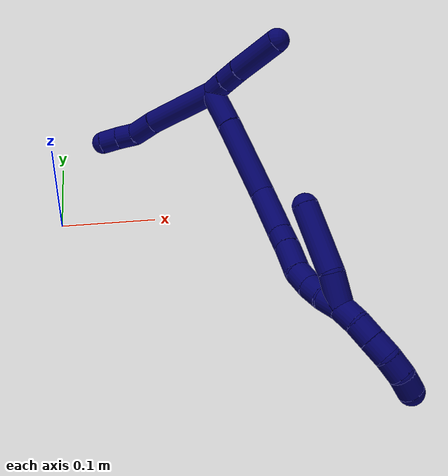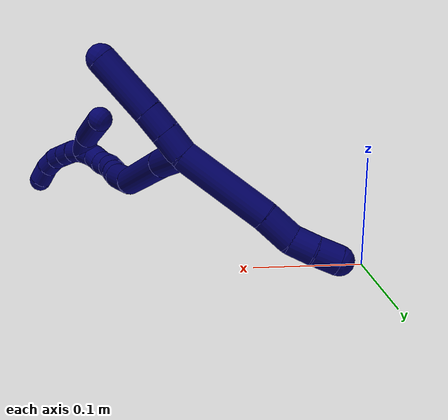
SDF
<sdf version="1.7">
 <world name="default">
  <model name="photoneo_s_sensor">
   <static>1</static>
   <pose>0 0 2 1.57079 1.57079 3.14159</pose>
   <link name="link">
    <inertial><mass>0.1</mass></inertial>
    <sensor name="sensor" type="depth">
     <update_rate>30</update_rate>
     <camera>
      <horizontal_fov>1.22</horizontal_fov>
      <image><width>1920</width><height>1200</height><format>B8G8R8</format></image>
      <clip><near>0.1</near><far>4</far></clip>
      <depth_camera><output>points</output></depth_camera>
     </camera>
     <plugin name="camera_plugin" filename="libgazebo_ros_depth_camera.so">
      <baseline>0.2</baseline>
      <alwaysOn>1</alwaysOn>
      <updateRate>0.0</updateRate>
      <cameraName>camera_ir</cameraName>
      <imageTopicName>/camera/color/image_raw</imageTopicName>
      <cameraInfoTopicName>/camera/color/camera_info</cameraInfoTopicName>
      <depthImageTopicName>/camera/depth/image_raw</depthImageTopicName>
      <depthImageCameraInfoTopicName>/camera/depth/camera_info</depthImageCameraInfoTopicName>
      <pointCloudTopicName>/camera/depth/points</pointCloudTopicName>
      <frameName>fr_optical</frameName>
      <pointCloudCutoff>0.1</pointCloudCutoff>
      <pointCloudCutoffMax>2.0</pointCloudCutoffMax>
      <distortionK1>0</distortionK1>
      <distortionK2>0</distortionK2>
      <distortionK3>0</distortionK3>
      <distortionT1>0</distortionT1>
      <distortionT2>0</distortionT2>
      <CxPrime>0</CxPrime>
      <Cx>0</Cx>
      <Cy>0</Cy>
      <focalLength>0</focalLength>
      <hackBaseline>0</hackBaseline>
     </plugin>
    </sensor>
   </link>
  </model>
  <model name="bin">
   <static>1</static>
   <link name="bottom">
    <collision name="collision-bottom">
     <pose>0 0 -0.01 0 -0 0</pose>
     <geometry><box><size>0.8 0.6 0.02</size></box></geometry>
     <surface>
      <friction><ode><mu>100</mu><mu2>100</mu2></ode></friction>
      <contact><collide_bitmask>65535</collide_bitmask></contact>
     </surface>
    </collision>
   </link>
   <link name="west_wall">
    <collision name="collision-west_wall">
     <pose>-0.41 0 0.1 0 -0 0</pose>
     <geometry><box><size>0.02 0.6 0.2</size></box></geometry>
     <surface>
      <friction><ode><mu>100</mu><mu2>100</mu2></ode></friction>
      <contact><collide_bitmask>65535</collide_bitmask></contact>
     </surface>
    </collision>
   </link>
   <link name="east_wall">
    <collision name="collision-east_wall">
     <pose>0.41 0 0.1 0 -0 0</pose>
     <geometry><box><size>0.02 0.6 0.2</size></box></geometry>
     <surface>
      <friction><ode><mu>100</mu><mu2>100</mu2></ode></friction>
      <contact><collide_bitmask>65535</collide_bitmask></contact>
     </surface>
    </collision>
   </link>
   <link name="south_wall">
    <collision name="collision-south_wall">
     <pose>0 -0.31 0.1 0 -0 0</pose>
     <geometry><box><size>0.8 0.02 0.2</size></box></geometry>
     <surface>
      <friction><ode><mu>100</mu><mu2>100</mu2></ode></friction>
      <contact><collide_bitmask>65535</collide_bitmask></contact>
     </surface>
    </collision>
   </link>
   <link name="north_wall">
    <collision name="collision-north_wall">
     <pose>0 0.31 0.1 0 -0 0</pose>
     <geometry><box><size>0.8 0.02 0.2</size></box></geometry>
     <surface>
      <friction><ode><mu>100</mu><mu2>100</mu2></ode></friction>
      <contact><collide_bitmask>65535</collide_bitmask></contact>
     </surface>
    </collision>
   </link>
  </model>
  <model name="7">
   <static>0</static>
   <link name="7">
    <collision name="collision-cylinder-e_1_2_8">
     <pose>-0.002629 -0.009441 -0.039154 2.90498 -0.065177 -0.535371</pose>
     <geometry><cylinder><radius>0.0125</radius><length>0.080723</length></cylinder></geometry>
     <surface>
      <friction><ode><mu>1.16</mu><mu2>1.16</mu2><slip1>0</slip1><slip2>0</slip2></ode></friction>
      <contact><ode><kp>1e+06</kp><kd>1</kd><max_vel>0</max_vel><min_depth>0.001</min_depth></ode></contact>
     </surface>
    </collision>
    <visual name="visual-cylinder-e_1_2_8">
     <pose>-0.002629 -0.009441 -0.039154 2.90498 -0.065177 -0.535371</pose>
     <geometry><cylinder><radius>0.0125</radius><length>0.080723</length></cylinder></geometry>
     <material><ambient>0.003922 0 0.403922 1</ambient></material>
    </visual>
    <collision name="collision-cylinder-e_2_8_9">
     <pose>-0.00526 -0.023241 -0.091728 2.82753 -0.000159 -0.001007</pose>
     <geometry><cylinder><radius>0.0125</radius><length>0.028222</length></cylinder></geometry>
     <surface>
      <friction><ode><mu>1.16</mu><mu2>1.16</mu2><slip1>0</slip1><slip2>0</slip2></ode></friction>
      <contact><ode><kp>1e+06</kp><kd>1</kd><max_vel>0</max_vel><min_depth>0.001</min_depth></ode></contact>
     </surface>
    </collision>
    <visual name="visual-cylinder-e_2_8_9">
     <pose>-0.00526 -0.023241 -0.091728 2.82753 -0.000159 -0.001007</pose>
     <geometry><cylinder><radius>0.0125</radius><length>0.028222</length></cylinder></geometry>
     <material><ambient>0.003922 0 0.403922 1</ambient></material>
    </visual>
    <collision name="collision-cylinder-e_3_9_10">
     <pose>-0.00736 -0.028222 -0.115212 3.07994 -0.205164 -2.55954</pose>
     <geometry><cylinder><radius>0.0125</radius><length>0.020596</length></cylinder></geometry>
     <surface>
      <friction><ode><mu>1.16</mu><mu2>1.16</mu2><slip1>0</slip1><slip2>0</slip2></ode></friction>
      <contact><ode><kp>1e+06</kp><kd>1</kd><max_vel>0</max_vel><min_depth>0.001</min_depth></ode></contact>
     </surface>
    </collision>
    <visual name="visual-cylinder-e_3_9_10">
     <pose>-0.00736 -0.028222 -0.115212 3.07994 -0.205164 -2.55954</pose>
     <geometry><cylinder><radius>0.0125</radius><length>0.020596</length></cylinder></geometry>
     <material><ambient>0.003922 0 0.403922 1</ambient></material>
    </visual>
    <collision name="collision-cylinder-e_4_10_6">
     <pose>-0.012513 -0.030271 -0.134932 2.99484 -0.303296 -2.24491</pose>
     <geometry><cylinder><radius>0.0125</radius><length>0.020459</length></cylinder></geometry>
     <surface>
      <friction><ode><mu>1.16</mu><mu2>1.16</mu2><slip1>0</slip1><slip2>0</slip2></ode></friction>
      <contact><ode><kp>1e+06</kp><kd>1</kd><max_vel>0</max_vel><min_depth>0.001</min_depth></ode></contact>
     </surface>
    </collision>
    <visual name="visual-cylinder-e_4_10_6">
     <pose>-0.012513 -0.030271 -0.134932 2.99484 -0.303296 -2.24491</pose>
     <geometry><cylinder><radius>0.0125</radius><length>0.020459</length></cylinder></geometry>
     <material><ambient>0.003922 0 0.403922 1</ambient></material>
    </visual>
    <collision name="collision-cylinder-e_1_2_11">
     <pose>-0.001931 0.003882 0.010235 -0.362468 -0.17456 0.032066</pose>
     <geometry><cylinder><radius>0.0125</radius><length>0.022231</length></cylinder></geometry>
     <surface>
      <friction><ode><mu>1.16</mu><mu2>1.16</mu2><slip1>0</slip1><slip2>0</slip2></ode></friction>
      <contact><ode><kp>1e+06</kp><kd>1</kd><max_vel>0</max_vel><min_depth>0.001</min_depth></ode></contact>
     </surface>
    </collision>
    <visual name="visual-cylinder-e_1_2_11">
     <pose>-0.001931 0.003882 0.010235 -0.362468 -0.17456 0.032066</pose>
     <geometry><cylinder><radius>0.0125</radius><length>0.022231</length></cylinder></geometry>
     <material><ambient>0.003922 0 0.403922 1</ambient></material>
    </visual>
    <collision name="collision-cylinder-e_2_11_12">
     <pose>-0.005513 0.011471 0.03062 -0.350264 -0.151686 0.02689</pose>
     <geometry><cylinder><radius>0.0125</radius><length>0.021862</length></cylinder></geometry>
     <surface>
      <friction><ode><mu>1.16</mu><mu2>1.16</mu2><slip1>0</slip1><slip2>0</slip2></ode></friction>
      <contact><ode><kp>1e+06</kp><kd>1</kd><max_vel>0</max_vel><min_depth>0.001</min_depth></ode></contact>
     </surface>
    </collision>
    <visual name="visual-cylinder-e_2_11_12">
     <pose>-0.005513 0.011471 0.03062 -0.350264 -0.151686 0.02689</pose>
     <geometry><cylinder><radius>0.0125</radius><length>0.021862</length></cylinder></geometry>
     <material><ambient>0.003922 0 0.403922 1</ambient></material>
    </visual>
    <collision name="collision-cylinder-e_3_12_5">
     <pose>-0.010446 0.024162 0.067036 -0.329533 -0.117647 0.019584</pose>
     <geometry><cylinder><radius>0.0125</radius><length>0.055907</length></cylinder></geometry>
     <surface>
      <friction><ode><mu>1.16</mu><mu2>1.16</mu2><slip1>0</slip1><slip2>0</slip2></ode></friction>
      <contact><ode><kp>1e+06</kp><kd>1</kd><max_vel>0</max_vel><min_depth>0.001</min_depth></ode></contact>
     </surface>
    </collision>
    <visual name="visual-cylinder-e_3_12_5">
     <pose>-0.010446 0.024162 0.067036 -0.329533 -0.117647 0.019584</pose>
     <geometry><cylinder><radius>0.0125</radius><length>0.055907</length></cylinder></geometry>
     <material><ambient>0.003922 0 0.403922 1</ambient></material>
    </visual>
    <collision name="collision-cylinder-e_1_2_13">
     <pose>-0.002123 -0.019717 0.010529 1.08033 -0.094704 -0.056817</pose>
     <geometry><cylinder><radius>0.0125</radius><length>0.044905</length></cylinder></geometry>
     <surface>
      <friction><ode><mu>1.16</mu><mu2>1.16</mu2><slip1>0</slip1><slip2>0</slip2></ode></friction>
      <contact><ode><kp>1e+06</kp><kd>1</kd><max_vel>0</max_vel><min_depth>0.001</min_depth></ode></contact>
     </surface>
    </collision>
    <visual name="visual-cylinder-e_1_2_13">
     <pose>-0.002123 -0.019717 0.010529 1.08033 -0.094704 -0.056817</pose>
     <geometry><cylinder><radius>0.0125</radius><length>0.044905</length></cylinder></geometry>
     <material><ambient>0.003922 0 0.403922 1</ambient></material>
    </visual>
    <collision name="collision-cylinder-e_2_13_14">
     <pose>-0.006924 -0.078455 0.039446 1.13041 -0.062003 -0.039331</pose>
     <geometry><cylinder><radius>0.0125</radius><length>0.08644</length></cylinder></geometry>
     <surface>
      <friction><ode><mu>1.16</mu><mu2>1.16</mu2><slip1>0</slip1><slip2>0</slip2></ode></friction>
      <contact><ode><kp>1e+06</kp><kd>1</kd><max_vel>0</max_vel><min_depth>0.001</min_depth></ode></contact>
     </surface>
    </collision>
    <visual name="visual-cylinder-e_2_13_14">
     <pose>-0.006924 -0.078455 0.039446 1.13041 -0.062003 -0.039331</pose>
     <geometry><cylinder><radius>0.0125</radius><length>0.08644</length></cylinder></geometry>
     <material><ambient>0.003922 0 0.403922 1</ambient></material>
    </visual>
    <collision name="collision-cylinder-e_3_14_15">
     <pose>-0.018121 -0.138717 0.071442 1.00105 -0.325678 -0.17925</pose>
     <geometry><cylinder><radius>0.0125</radius><length>0.05325</length></cylinder></geometry>
     <surface>
      <friction><ode><mu>1.16</mu><mu2>1.16</mu2><slip1>0</slip1><slip2>0</slip2></ode></friction>
      <contact><ode><kp>1e+06</kp><kd>1</kd><max_vel>0</max_vel><min_depth>0.001</min_depth></ode></contact>
     </surface>
    </collision>
    <visual name="visual-cylinder-e_3_14_15">
     <pose>-0.018121 -0.138717 0.071442 1.00105 -0.325678 -0.17925</pose>
     <geometry><cylinder><radius>0.0125</radius><length>0.05325</length></cylinder></geometry>
     <material><ambient>0.003922 0 0.403922 1</ambient></material>
    </visual>
    <collision name="collision-cylinder-e_4_15_16">
     <pose>-0.03076 -0.167309 0.09061 0.923214 -0.420347 -0.211445</pose>
     <geometry><cylinder><radius>0.0125</radius><length>0.020193</length></cylinder></geometry>
     <surface>
      <friction><ode><mu>1.16</mu><mu2>1.16</mu2><slip1>0</slip1><slip2>0</slip2></ode></friction>
      <contact><ode><kp>1e+06</kp><kd>1</kd><max_vel>0</max_vel><min_depth>0.001</min_depth></ode></contact>
     </surface>
    </collision>
    <visual name="visual-cylinder-e_4_15_16">
     <pose>-0.03076 -0.167309 0.09061 0.923214 -0.420347 -0.211445</pose>
     <geometry><cylinder><radius>0.0125</radius><length>0.020193</length></cylinder></geometry>
     <material><ambient>0.003922 0 0.403922 1</ambient></material>
    </visual>
    <collision name="collision-cylinder-e_5_16_17">
     <pose>-0.041796 -0.18707 0.104643 0.971739 -0.431358 -0.230373</pose>
     <geometry><cylinder><radius>0.0125</radius><length>0.033082</length></cylinder></geometry>
     <surface>
      <friction><ode><mu>1.16</mu><mu2>1.16</mu2><slip1>0</slip1><slip2>0</slip2></ode></friction>
      <contact><ode><kp>1e+06</kp><kd>1</kd><max_vel>0</max_vel><min_depth>0.001</min_depth></ode></contact>
     </surface>
    </collision>
    <visual name="visual-cylinder-e_5_16_17">
     <pose>-0.041796 -0.18707 0.104643 0.971739 -0.431358 -0.230373</pose>
     <geometry><cylinder><radius>0.0125</radius><length>0.033082</length></cylinder></geometry>
     <material><ambient>0.003922 0 0.403922 1</ambient></material>
    </visual>
    <collision name="collision-cylinder-e_6_17_18">
     <pose>-0.05103 -0.20643 0.120315 0.767822 -0.227629 -0.092285</pose>
     <geometry><cylinder><radius>0.0125</radius><length>0.020546</length></cylinder></geometry>
     <surface>
      <friction><ode><mu>1.16</mu><mu2>1.16</mu2><slip1>0</slip1><slip2>0</slip2></ode></friction>
      <contact><ode><kp>1e+06</kp><kd>1</kd><max_vel>0</max_vel><min_depth>0.001</min_depth></ode></contact>
     </surface>
    </collision>
    <visual name="visual-cylinder-e_6_17_18">
     <pose>-0.05103 -0.20643 0.120315 0.767822 -0.227629 -0.092285</pose>
     <geometry><cylinder><radius>0.0125</radius><length>0.020546</length></cylinder></geometry>
     <material><ambient>0.003922 0 0.403922 1</ambient></material>
    </visual>
    <collision name="collision-cylinder-e_7_18_19">
     <pose>-0.056567 -0.218852 0.135771 0.585179 -0.314191 -0.095359</pose>
     <geometry><cylinder><radius>0.0125</radius><length>0.020828</length></cylinder></geometry>
     <surface>
      <friction><ode><mu>1.16</mu><mu2>1.16</mu2><slip1>0</slip1><slip2>0</slip2></ode></friction>
      <contact><ode><kp>1e+06</kp><kd>1</kd><max_vel>0</max_vel><min_depth>0.001</min_depth></ode></contact>
     </surface>
    </collision>
    <visual name="visual-cylinder-e_7_18_19">
     <pose>-0.056567 -0.218852 0.135771 0.585179 -0.314191 -0.095359</pose>
     <geometry><cylinder><radius>0.0125</radius><length>0.020828</length></cylinder></geometry>
     <material><ambient>0.003922 0 0.403922 1</ambient></material>
    </visual>
    <collision name="collision-cylinder-e_8_19_1">
     <pose>-0.060805 -0.229557 0.152931 0.531503 -0.098443 -0.026815</pose>
     <geometry><cylinder><radius>0.0125</radius><length>0.020756</length></cylinder></geometry>
     <surface>
      <friction><ode><mu>1.16</mu><mu2>1.16</mu2><slip1>0</slip1><slip2>0</slip2></ode></friction>
      <contact><ode><kp>1e+06</kp><kd>1</kd><max_vel>0</max_vel><min_depth>0.001</min_depth></ode></contact>
     </surface>
    </collision>
    <visual name="visual-cylinder-e_8_19_1">
     <pose>-0.060805 -0.229557 0.152931 0.531503 -0.098443 -0.026815</pose>
     <geometry><cylinder><radius>0.0125</radius><length>0.020756</length></cylinder></geometry>
     <material><ambient>0.003922 0 0.403922 1</ambient></material>
    </visual>
    <collision name="collision-cylinder-e_1_1_20">
     <pose>-0.061656 -0.241733 0.16903 0.767354 0.01696 0.006847</pose>
     <geometry><cylinder><radius>0.0125</radius><length>0.02</length></cylinder></geometry>
     <surface>
      <friction><ode><mu>1.16</mu><mu2>1.16</mu2><slip1>0</slip1><slip2>0</slip2></ode></friction>
      <contact><ode><kp>1e+06</kp><kd>1</kd><max_vel>0</max_vel><min_depth>0.001</min_depth></ode></contact>
     </surface>
    </collision>
    <visual name="visual-cylinder-e_1_1_20">
     <pose>-0.061656 -0.241733 0.16903 0.767354 0.01696 0.006847</pose>
     <geometry><cylinder><radius>0.0125</radius><length>0.02</length></cylinder></geometry>
     <material><ambient>0.003922 0 0.403922 1</ambient></material>
    </visual>
    <collision name="collision-cylinder-e_2_20_21">
     <pose>-0.060031 -0.256658 0.18207 0.938964 0.14601 0.074171</pose>
     <geometry><cylinder><radius>0.0125</radius><length>0.02</length></cylinder></geometry>
     <surface>
      <friction><ode><mu>1.16</mu><mu2>1.16</mu2><slip1>0</slip1><slip2>0</slip2></ode></friction>
      <contact><ode><kp>1e+06</kp><kd>1</kd><max_vel>0</max_vel><min_depth>0.001</min_depth></ode></contact>
     </surface>
    </collision>
    <visual name="visual-cylinder-e_2_20_21">
     <pose>-0.060031 -0.256658 0.18207 0.938964 0.14601 0.074171</pose>
     <geometry><cylinder><radius>0.0125</radius><length>0.02</length></cylinder></geometry>
     <material><ambient>0.003922 0 0.403922 1</ambient></material>
    </visual>
    <collision name="collision-cylinder-e_3_21_22">
     <pose>-0.056824 -0.272593 0.193718 0.940217 0.176117 0.089657</pose>
     <geometry><cylinder><radius>0.0125</radius><length>0.02</length></cylinder></geometry>
     <surface>
      <friction><ode><mu>1.16</mu><mu2>1.16</mu2><slip1>0</slip1><slip2>0</slip2></ode></friction>
      <contact><ode><kp>1e+06</kp><kd>1</kd><max_vel>0</max_vel><min_depth>0.001</min_depth></ode></contact>
     </surface>
    </collision>
    <visual name="visual-cylinder-e_3_21_22">
     <pose>-0.056824 -0.272593 0.193718 0.940217 0.176117 0.089657</pose>
     <geometry><cylinder><radius>0.0125</radius><length>0.02</length></cylinder></geometry>
     <material><ambient>0.003922 0 0.403922 1</ambient></material>
    </visual>
    <collision name="collision-cylinder-e_4_22_23">
     <pose>-0.050846 -0.288859 0.203132 1.16122 0.436347 0.288866</pose>
     <geometry><cylinder><radius>0.0125</radius><length>0.02</length></cylinder></geometry>
     <surface>
      <friction><ode><mu>1.16</mu><mu2>1.16</mu2><slip1>0</slip1><slip2>0</slip2></ode></friction>
      <contact><ode><kp>1e+06</kp><kd>1</kd><max_vel>0</max_vel><min_depth>0.001</min_depth></ode></contact>
     </surface>
    </collision>
    <visual name="visual-cylinder-e_4_22_23">
     <pose>-0.050846 -0.288859 0.203132 1.16122 0.436347 0.288866</pose>
     <geometry><cylinder><radius>0.0125</radius><length>0.02</length></cylinder></geometry>
     <material><ambient>0.003922 0 0.403922 1</ambient></material>
    </visual>
    <collision name="collision-cylinder-e_5_23_4">
     <pose>-0.040683 -0.305166 0.207666 1.45563 0.635554 0.570169</pose>
     <geometry><cylinder><radius>0.0125</radius><length>0.02</length></cylinder></geometry>
     <surface>
      <friction><ode><mu>1.16</mu><mu2>1.16</mu2><slip1>0</slip1><slip2>0</slip2></ode></friction>
      <contact><ode><kp>1e+06</kp><kd>1</kd><max_vel>0</max_vel><min_depth>0.001</min_depth></ode></contact>
     </surface>
    </collision>
    <visual name="visual-cylinder-e_5_23_4">
     <pose>-0.040683 -0.305166 0.207666 1.45563 0.635554 0.570169</pose>
     <geometry><cylinder><radius>0.0125</radius><length>0.02</length></cylinder></geometry>
     <material><ambient>0.003922 0 0.403922 1</ambient></material>
    </visual>
    <collision name="collision-cylinder-e_1_1_24">
     <pose>-0.063263 -0.219349 0.159663 -1.71046 -0.091961 0.105768</pose>
     <geometry><cylinder><radius>0.0125</radius><length>0.03132</length></cylinder></geometry>
     <surface>
      <friction><ode><mu>1.16</mu><mu2>1.16</mu2><slip1>0</slip1><slip2>0</slip2></ode></friction>
      <contact><ode><kp>1e+06</kp><kd>1</kd><max_vel>0</max_vel><min_depth>0.001</min_depth></ode></contact>
     </surface>
    </collision>
    <visual name="visual-cylinder-e_1_1_24">
     <pose>-0.063263 -0.219349 0.159663 -1.71046 -0.091961 0.105768</pose>
     <geometry><cylinder><radius>0.0125</radius><length>0.03132</length></cylinder></geometry>
     <material><ambient>0.003922 0 0.403922 1</ambient></material>
    </visual>
    <collision name="collision-cylinder-e_2_24_3">
     <pose>-0.061288 -0.171991 0.145288 -1.93601 0.099563 -0.14453</pose>
     <geometry><cylinder><radius>0.0125</radius><length>0.06868</length></cylinder></geometry>
     <surface>
      <friction><ode><mu>1.16</mu><mu2>1.16</mu2><slip1>0</slip1><slip2>0</slip2></ode></friction>
      <contact><ode><kp>1e+06</kp><kd>1</kd><max_vel>0</max_vel><min_depth>0.001</min_depth></ode></contact>
     </surface>
    </collision>
    <visual name="visual-cylinder-e_2_24_3">
     <pose>-0.061288 -0.171991 0.145288 -1.93601 0.099563 -0.14453</pose>
     <geometry><cylinder><radius>0.0125</radius><length>0.06868</length></cylinder></geometry>
     <material><ambient>0.003922 0 0.403922 1</ambient></material>
    </visual>
    <collision name="collision-sphere-3">
     <pose>-0.057875 -0.140075 0.133085 0 -0 0</pose>
     <geometry><sphere><radius>0.0125</radius></sphere></geometry>
     <surface>
      <friction><ode><mu>1.16</mu><mu2>1.16</mu2><slip1>0</slip1><slip2>0</slip2></ode></friction>
      <contact><ode><kp>1e+06</kp><kd>1</kd><max_vel>0</max_vel><min_depth>0.001</min_depth></ode></contact>
     </surface>
    </collision>
    <visual name="visual-sphere-3">
     <pose>-0.057875 -0.140075 0.133085 0 -0 0</pose>
     <geometry><sphere><radius>0.0125</radius></sphere></geometry>
     <material><ambient>0.003922 0 0.403922 1</ambient></material>
    </visual>
    <collision name="collision-sphere-24">
     <pose>-0.064701 -0.203907 0.157492 0 -0 0</pose>
     <geometry><sphere><radius>0.0125</radius></sphere></geometry>
     <surface>
      <friction><ode><mu>1.16</mu><mu2>1.16</mu2><slip1>0</slip1><slip2>0</slip2></ode></friction>
      <contact><ode><kp>1e+06</kp><kd>1</kd><max_vel>0</max_vel><min_depth>0.001</min_depth></ode></contact>
     </surface>
    </collision>
    <visual name="visual-sphere-24">
     <pose>-0.064701 -0.203907 0.157492 0 -0 0</pose>
     <geometry><sphere><radius>0.0125</radius></sphere></geometry>
     <material><ambient>0.003922 0 0.403922 1</ambient></material>
    </visual>
    <collision name="collision-sphere-4">
     <pose>-0.034747 -0.31316 0.208591 0 -0 0</pose>
     <geometry><sphere><radius>0.0125</radius></sphere></geometry>
     <surface>
      <friction><ode><mu>1.16</mu><mu2>1.16</mu2><slip1>0</slip1><slip2>0</slip2></ode></friction>
      <contact><ode><kp>1e+06</kp><kd>1</kd><max_vel>0</max_vel><min_depth>0.001</min_depth></ode></contact>
     </surface>
    </collision>
    <visual name="visual-sphere-4">
     <pose>-0.034747 -0.31316 0.208591 0 -0 0</pose>
     <geometry><sphere><radius>0.0125</radius></sphere></geometry>
     <material><ambient>0.003922 0 0.403922 1</ambient></material>
    </visual>
    <collision name="collision-sphere-23">
     <pose>-0.046619 -0.297172 0.206741 0 -0 0</pose>
     <geometry><sphere><radius>0.0125</radius></sphere></geometry>
     <surface>
      <friction><ode><mu>1.16</mu><mu2>1.16</mu2><slip1>0</slip1><slip2>0</slip2></ode></friction>
      <contact><ode><kp>1e+06</kp><kd>1</kd><max_vel>0</max_vel><min_depth>0.001</min_depth></ode></contact>
     </surface>
    </collision>
    <visual name="visual-sphere-23">
     <pose>-0.046619 -0.297172 0.206741 0 -0 0</pose>
     <geometry><sphere><radius>0.0125</radius></sphere></geometry>
     <material><ambient>0.003922 0 0.403922 1</ambient></material>
    </visual>
    <collision name="collision-sphere-22">
     <pose>-0.055072 -0.280545 0.199523 0 -0 0</pose>
     <geometry><sphere><radius>0.0125</radius></sphere></geometry>
     <surface>
      <friction><ode><mu>1.16</mu><mu2>1.16</mu2><slip1>0</slip1><slip2>0</slip2></ode></friction>
      <contact><ode><kp>1e+06</kp><kd>1</kd><max_vel>0</max_vel><min_depth>0.001</min_depth></ode></contact>
     </surface>
    </collision>
    <visual name="visual-sphere-22">
     <pose>-0.055072 -0.280545 0.199523 0 -0 0</pose>
     <geometry><sphere><radius>0.0125</radius></sphere></geometry>
     <material><ambient>0.003922 0 0.403922 1</ambient></material>
    </visual>
    <collision name="collision-sphere-21">
     <pose>-0.058576 -0.264641 0.187913 0 -0 0</pose>
     <geometry><sphere><radius>0.0125</radius></sphere></geometry>
     <surface>
      <friction><ode><mu>1.16</mu><mu2>1.16</mu2><slip1>0</slip1><slip2>0</slip2></ode></friction>
      <contact><ode><kp>1e+06</kp><kd>1</kd><max_vel>0</max_vel><min_depth>0.001</min_depth></ode></contact>
     </surface>
    </collision>
    <visual name="visual-sphere-21">
     <pose>-0.058576 -0.264641 0.187913 0 -0 0</pose>
     <geometry><sphere><radius>0.0125</radius></sphere></geometry>
     <material><ambient>0.003922 0 0.403922 1</ambient></material>
    </visual>
    <collision name="collision-sphere-20">
     <pose>-0.061486 -0.248674 0.176227 0 -0 0</pose>
     <geometry><sphere><radius>0.0125</radius></sphere></geometry>
     <surface>
      <friction><ode><mu>1.16</mu><mu2>1.16</mu2><slip1>0</slip1><slip2>0</slip2></ode></friction>
      <contact><ode><kp>1e+06</kp><kd>1</kd><max_vel>0</max_vel><min_depth>0.001</min_depth></ode></contact>
     </surface>
    </collision>
    <visual name="visual-sphere-20">
     <pose>-0.061486 -0.248674 0.176227 0 -0 0</pose>
     <geometry><sphere><radius>0.0125</radius></sphere></geometry>
     <material><ambient>0.003922 0 0.403922 1</ambient></material>
    </visual>
    <collision name="collision-sphere-11">
     <pose>-0.003861 0.007763 0.020471 0 -0 0</pose>
     <geometry><sphere><radius>0.0125</radius></sphere></geometry>
     <surface>
      <friction><ode><mu>1.16</mu><mu2>1.16</mu2><slip1>0</slip1><slip2>0</slip2></ode></friction>
      <contact><ode><kp>1e+06</kp><kd>1</kd><max_vel>0</max_vel><min_depth>0.001</min_depth></ode></contact>
     </surface>
    </collision>
    <visual name="visual-sphere-11">
     <pose>-0.003861 0.007763 0.020471 0 -0 0</pose>
     <geometry><sphere><radius>0.0125</radius></sphere></geometry>
     <material><ambient>0.003922 0 0.403922 1</ambient></material>
    </visual>
    <collision name="collision-sphere-6">
     <pose>-0.015568 -0.031698 -0.14459 0 -0 0</pose>
     <geometry><sphere><radius>0.0125</radius></sphere></geometry>
     <surface>
      <friction><ode><mu>1.16</mu><mu2>1.16</mu2><slip1>0</slip1><slip2>0</slip2></ode></friction>
      <contact><ode><kp>1e+06</kp><kd>1</kd><max_vel>0</max_vel><min_depth>0.001</min_depth></ode></contact>
     </surface>
    </collision>
    <visual name="visual-sphere-6">
     <pose>-0.015568 -0.031698 -0.14459 0 -0 0</pose>
     <geometry><sphere><radius>0.0125</radius></sphere></geometry>
     <material><ambient>0.003922 0 0.403922 1</ambient></material>
    </visual>
    <collision name="collision-sphere-10">
     <pose>-0.009458 -0.028843 -0.125274 0 -0 0</pose>
     <geometry><sphere><radius>0.0125</radius></sphere></geometry>
     <surface>
      <friction><ode><mu>1.16</mu><mu2>1.16</mu2><slip1>0</slip1><slip2>0</slip2></ode></friction>
      <contact><ode><kp>1e+06</kp><kd>1</kd><max_vel>0</max_vel><min_depth>0.001</min_depth></ode></contact>
     </surface>
    </collision>
    <visual name="visual-sphere-10">
     <pose>-0.009458 -0.028843 -0.125274 0 -0 0</pose>
     <geometry><sphere><radius>0.0125</radius></sphere></geometry>
     <material><ambient>0.003922 0 0.403922 1</ambient></material>
    </visual>
    <collision name="collision-sphere-9">
     <pose>-0.005262 -0.027601 -0.105149 0 -0 0</pose>
     <geometry><sphere><radius>0.0125</radius></sphere></geometry>
     <surface>
      <friction><ode><mu>1.16</mu><mu2>1.16</mu2><slip1>0</slip1><slip2>0</slip2></ode></friction>
      <contact><ode><kp>1e+06</kp><kd>1</kd><max_vel>0</max_vel><min_depth>0.001</min_depth></ode></contact>
     </surface>
    </collision>
    <visual name="visual-sphere-9">
     <pose>-0.005262 -0.027601 -0.105149 0 -0 0</pose>
     <geometry><sphere><radius>0.0125</radius></sphere></geometry>
     <material><ambient>0.003922 0 0.403922 1</ambient></material>
    </visual>
    <collision name="collision-sphere-2">
     <geometry><sphere><radius>0.0125</radius></sphere></geometry>
     <surface>
      <friction><ode><mu>1.16</mu><mu2>1.16</mu2><slip1>0</slip1><slip2>0</slip2></ode></friction>
      <contact><ode><kp>1e+06</kp><kd>1</kd><max_vel>0</max_vel><min_depth>0.001</min_depth></ode></contact>
     </surface>
    </collision>
    <visual name="visual-sphere-2">
     <geometry><sphere><radius>0.0125</radius></sphere></geometry>
     <material><ambient>0.003922 0 0.403922 1</ambient></material>
    </visual>
    <collision name="collision-sphere-19">
     <pose>-0.059785 -0.224323 0.144028 0 -0 0</pose>
     <geometry><sphere><radius>0.0125</radius></sphere></geometry>
     <surface>
      <friction><ode><mu>1.16</mu><mu2>1.16</mu2><slip1>0</slip1><slip2>0</slip2></ode></friction>
      <contact><ode><kp>1e+06</kp><kd>1</kd><max_vel>0</max_vel><min_depth>0.001</min_depth></ode></contact>
     </surface>
    </collision>
    <visual name="visual-sphere-19">
     <pose>-0.059785 -0.224323 0.144028 0 -0 0</pose>
     <geometry><sphere><radius>0.0125</radius></sphere></geometry>
     <material><ambient>0.003922 0 0.403922 1</ambient></material>
    </visual>
    <collision name="collision-sphere-8">
     <pose>-0.005258 -0.018882 -0.078307 0 -0 0</pose>
     <geometry><sphere><radius>0.0125</radius></sphere></geometry>
     <surface>
      <friction><ode><mu>1.16</mu><mu2>1.16</mu2><slip1>0</slip1><slip2>0</slip2></ode></friction>
      <contact><ode><kp>1e+06</kp><kd>1</kd><max_vel>0</max_vel><min_depth>0.001</min_depth></ode></contact>
     </surface>
    </collision>
    <visual name="visual-sphere-8">
     <pose>-0.005258 -0.018882 -0.078307 0 -0 0</pose>
     <geometry><sphere><radius>0.0125</radius></sphere></geometry>
     <material><ambient>0.003922 0 0.403922 1</ambient></material>
    </visual>
    <collision name="collision-sphere-12">
     <pose>-0.007164 0.015179 0.04077 0 -0 0</pose>
     <geometry><sphere><radius>0.0125</radius></sphere></geometry>
     <surface>
      <friction><ode><mu>1.16</mu><mu2>1.16</mu2><slip1>0</slip1><slip2>0</slip2></ode></friction>
      <contact><ode><kp>1e+06</kp><kd>1</kd><max_vel>0</max_vel><min_depth>0.001</min_depth></ode></contact>
     </surface>
    </collision>
    <visual name="visual-sphere-12">
     <pose>-0.007164 0.015179 0.04077 0 -0 0</pose>
     <geometry><sphere><radius>0.0125</radius></sphere></geometry>
     <material><ambient>0.003922 0 0.403922 1</ambient></material>
    </visual>
    <collision name="collision-sphere-5">
     <pose>-0.013727 0.033145 0.093303 0 -0 0</pose>
     <geometry><sphere><radius>0.0125</radius></sphere></geometry>
     <surface>
      <friction><ode><mu>1.16</mu><mu2>1.16</mu2><slip1>0</slip1><slip2>0</slip2></ode></friction>
      <contact><ode><kp>1e+06</kp><kd>1</kd><max_vel>0</max_vel><min_depth>0.001</min_depth></ode></contact>
     </surface>
    </collision>
    <visual name="visual-sphere-5">
     <pose>-0.013727 0.033145 0.093303 0 -0 0</pose>
     <geometry><sphere><radius>0.0125</radius></sphere></geometry>
     <material><ambient>0.003922 0 0.403922 1</ambient></material>
    </visual>
    <collision name="collision-sphere-13">
     <pose>-0.004246 -0.039434 0.021057 0 -0 0</pose>
     <geometry><sphere><radius>0.0125</radius></sphere></geometry>
     <surface>
      <friction><ode><mu>1.16</mu><mu2>1.16</mu2><slip1>0</slip1><slip2>0</slip2></ode></friction>
      <contact><ode><kp>1e+06</kp><kd>1</kd><max_vel>0</max_vel><min_depth>0.001</min_depth></ode></contact>
     </surface>
    </collision>
    <visual name="visual-sphere-13">
     <pose>-0.004246 -0.039434 0.021057 0 -0 0</pose>
     <geometry><sphere><radius>0.0125</radius></sphere></geometry>
     <material><ambient>0.003922 0 0.403922 1</ambient></material>
    </visual>
    <collision name="collision-sphere-14">
     <pose>-0.009602 -0.117476 0.057835 0 -0 0</pose>
     <geometry><sphere><radius>0.0125</radius></sphere></geometry>
     <surface>
      <friction><ode><mu>1.16</mu><mu2>1.16</mu2><slip1>0</slip1><slip2>0</slip2></ode></friction>
      <contact><ode><kp>1e+06</kp><kd>1</kd><max_vel>0</max_vel><min_depth>0.001</min_depth></ode></contact>
     </surface>
    </collision>
    <visual name="visual-sphere-14">
     <pose>-0.009602 -0.117476 0.057835 0 -0 0</pose>
     <geometry><sphere><radius>0.0125</radius></sphere></geometry>
     <material><ambient>0.003922 0 0.403922 1</ambient></material>
    </visual>
    <collision name="collision-sphere-15">
     <pose>-0.02664 -0.159958 0.085049 0 -0 0</pose>
     <geometry><sphere><radius>0.0125</radius></sphere></geometry>
     <surface>
      <friction><ode><mu>1.16</mu><mu2>1.16</mu2><slip1>0</slip1><slip2>0</slip2></ode></friction>
      <contact><ode><kp>1e+06</kp><kd>1</kd><max_vel>0</max_vel><min_depth>0.001</min_depth></ode></contact>
     </surface>
    </collision>
    <visual name="visual-sphere-15">
     <pose>-0.02664 -0.159958 0.085049 0 -0 0</pose>
     <geometry><sphere><radius>0.0125</radius></sphere></geometry>
     <material><ambient>0.003922 0 0.403922 1</ambient></material>
    </visual>
    <collision name="collision-sphere-16">
     <pose>-0.03488 -0.174661 0.09617 0 -0 0</pose>
     <geometry><sphere><radius>0.0125</radius></sphere></geometry>
     <surface>
      <friction><ode><mu>1.16</mu><mu2>1.16</mu2><slip1>0</slip1><slip2>0</slip2></ode></friction>
      <contact><ode><kp>1e+06</kp><kd>1</kd><max_vel>0</max_vel><min_depth>0.001</min_depth></ode></contact>
     </surface>
    </collision>
    <visual name="visual-sphere-16">
     <pose>-0.03488 -0.174661 0.09617 0 -0 0</pose>
     <geometry><sphere><radius>0.0125</radius></sphere></geometry>
     <material><ambient>0.003922 0 0.403922 1</ambient></material>
    </visual>
    <collision name="collision-sphere-17">
     <pose>-0.048712 -0.199479 0.113115 0 -0 0</pose>
     <geometry><sphere><radius>0.0125</radius></sphere></geometry>
     <surface>
      <friction><ode><mu>1.16</mu><mu2>1.16</mu2><slip1>0</slip1><slip2>0</slip2></ode></friction>
      <contact><ode><kp>1e+06</kp><kd>1</kd><max_vel>0</max_vel><min_depth>0.001</min_depth></ode></contact>
     </surface>
    </collision>
    <visual name="visual-sphere-17">
     <pose>-0.048712 -0.199479 0.113115 0 -0 0</pose>
     <geometry><sphere><radius>0.0125</radius></sphere></geometry>
     <material><ambient>0.003922 0 0.403922 1</ambient></material>
    </visual>
    <collision name="collision-sphere-18">
     <pose>-0.053348 -0.213381 0.127515 0 -0 0</pose>
     <geometry><sphere><radius>0.0125</radius></sphere></geometry>
     <surface>
      <friction><ode><mu>1.16</mu><mu2>1.16</mu2><slip1>0</slip1><slip2>0</slip2></ode></friction>
      <contact><ode><kp>1e+06</kp><kd>1</kd><max_vel>0</max_vel><min_depth>0.001</min_depth></ode></contact>
     </surface>
    </collision>
    <visual name="visual-sphere-18">
     <pose>-0.053348 -0.213381 0.127515 0 -0 0</pose>
     <geometry><sphere><radius>0.0125</radius></sphere></geometry>
     <material><ambient>0.003922 0 0.403922 1</ambient></material>
    </visual>
    <collision name="collision-sphere-1">
     <pose>-0.061825 -0.234792 0.161834 0 -0 0</pose>
     <geometry><sphere><radius>0.0125</radius></sphere></geometry>
     <surface>
      <friction><ode><mu>1.16</mu><mu2>1.16</mu2><slip1>0</slip1><slip2>0</slip2></ode></friction>
      <contact><ode><kp>1e+06</kp><kd>1</kd><max_vel>0</max_vel><min_depth>0.001</min_depth></ode></contact>
     </surface>
    </collision>
    <visual name="visual-sphere-1">
     <pose>-0.061825 -0.234792 0.161834 0 -0 0</pose>
     <geometry><sphere><radius>0.0125</radius></sphere></geometry>
     <material><ambient>0.003922 0 0.403922 1</ambient></material>
    </visual>
    <inertial>
     <pose>-0.027011 -0.113465 0.065741 0 -0 0</pose>
     <mass>0.75</mass>
     <inertia>
      <ixx>0.000151</ixx>
      <ixy>0</ixy>
      <ixz>0</ixz>
      <iyy>-3.4e-05</iyy>
      <iyz>0</iyz>
      <izz>8.3e-05</izz>
     </inertia>
    </inertial>
   </link>
   <pose>0.169762 0.05887 0.120774 1.00045 0.568013 0.706356</pose>
  </model>
 </world>
</sdf>
